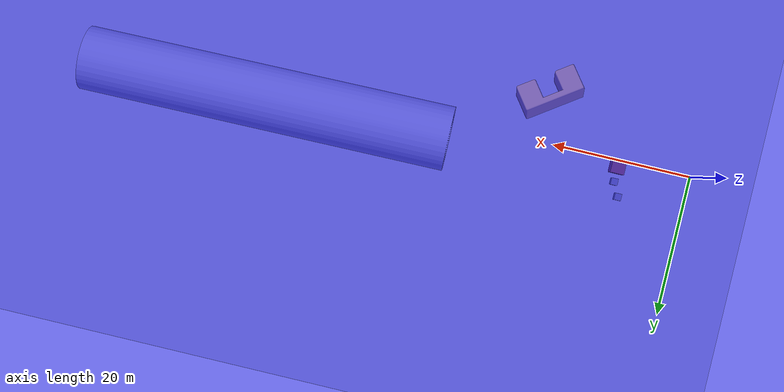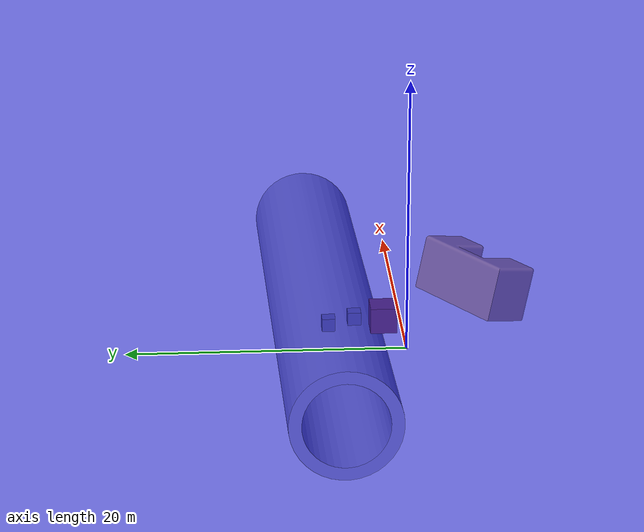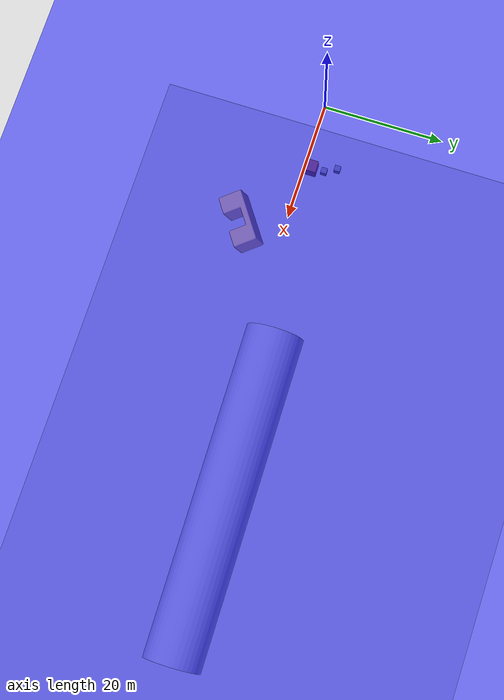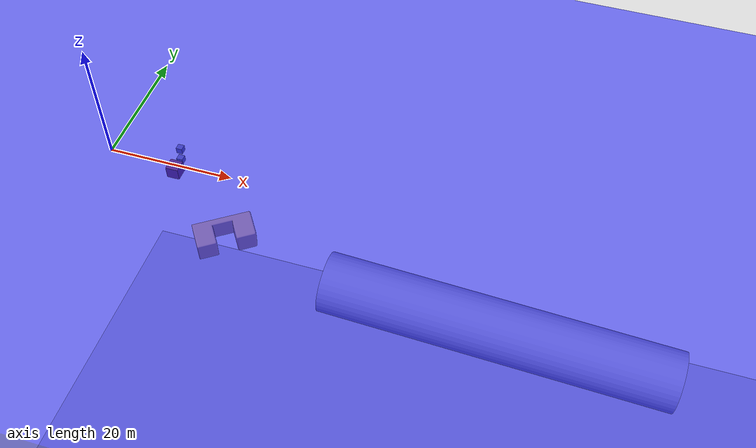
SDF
<sdf version="1.10">
 <world name="wamv_world">
  <physics name="1ms" type="ode">
   <max_step_size>0.001</max_step_size>
   <real_time_factor>1</real_time_factor>
   <real_time_update_rate>1000</real_time_update_rate>
  </physics>
  <plugin name="gz::sim::systems::Physics" filename="gz-sim-physics-system"/>
  <plugin name="gz::sim::systems::UserCommands" filename="gz-sim-user-commands-system"/>
  <plugin name="gz::sim::systems::Buoyancy" filename="gz-sim-buoyancy-system">
   <graded_buoyancy>
    <default_density>1000</default_density>
    <density_change><above_depth>0</above_depth><density>1</density></density_change>
   </graded_buoyancy>
   <enable>wamv</enable>
   <enable>my_lrauv_modified</enable>
   <enable>box_neutral_buoyancy</enable>
   <enable>box_neutral_buoyancy_1</enable>
   <enable>box_neutral_buoyancy_2</enable>
   <enable>Concave_Obstacle</enable>
   <enable>pipe</enable>
  </plugin>
  <plugin name="gz::sim::systems::Imu" filename="gz-sim-imu-system"/>
  <plugin name="gz::sim::systems::Magnetometer" filename="gz-sim-magnetometer-system"/>
  <plugin name="gz::sim::systems::ForceTorque" filename="gz-sim-forcetorque-system"/>
  <plugin name="gz::sim::systems::SceneBroadcaster" filename="gz-sim-scene-broadcaster-system"/>
  <plugin name="gz::sim::systems::Contact" filename="gz-sim-contact-system"/>
  <plugin name="gz::sim::systems::NavSat" filename="gz-sim-navsat-system"/>
  <plugin name="gz::sim::systems::AirPressure" filename="gz-sim-air-pressure-system"/>
  <plugin name="gz::sim::systems::Sensors" filename="gz-sim-sensors-system">
   <render_engine>ogre2</render_engine>
  </plugin>
  <spherical_coordinates>
   <surface_model>EARTH_WGS84</surface_model>
   <world_frame_orientation>ENU</world_frame_orientation>
   <latitude_deg>42.35821841111111</latitude_deg>
   <longitude_deg>-71.047923555555499</longitude_deg>
   <elevation>0</elevation>
   <heading_deg>0</heading_deg>
  </spherical_coordinates>
  <atmosphere type="adiabatic"/>
  <scene>
   <ambient>0.400000006 0.400000006 0.400000006 1</ambient>
   <background>0.699999988 0.699999988 0.699999988 1</background>
   <shadows>true</shadows>
  </scene>
  <gravity>0 0 -9.8000000000000007</gravity>
  <magnetic_field>5.5644999999999998e-06 2.2875799999999999e-05 -4.2388400000000002e-05</magnetic_field>
  <model name="water_plane">
   <static>true</static>
   <link name="link">
    <visual name="water_plane">
     <geometry><box><size>1000 1000 100</size><normal>0 0 1</normal></box></geometry>
     <material><ambient>0 0 1 0.5</ambient><diffuse>0 0 1 0.5</diffuse><specular>0 0 1 0.5</specular></material>
    </visual>
    <pose>0 0 -50 0 0 0</pose>
    <inertial>
     <mass>1</mass>
     <inertia><ixx>1</ixx><ixy>0</ixy><ixz>0</ixz><iyy>1</iyy><iyz>0</iyz><izz>1</izz></inertia>
    </inertial>
   </link>
   <pose>0 -4.9779529571533203 0 0 0 0</pose>
  </model>
  <model name="ground_plane">
   <static>true</static>
   <link name="link">
    <collision name="collision">
     <geometry><plane><normal>0 0 1</normal><size>1000 1000</size></plane></geometry>
     <surface><friction><ode><mu>100</mu><mu2>50</mu2></ode></friction></surface>
    </collision>
    <visual name="visual">
     <cast_shadows>false</cast_shadows>
     <geometry><plane><normal>0 0 1</normal><size>100 100</size></plane></geometry>
     <material>
      <ambient>0.300000012 0.300000012 0.300000012 1</ambient>
      <diffuse>0.699999988 0.699999988 0.699999988 1</diffuse>
      <specular>0.00999999978 0.00999999978 0.00999999978 1</specular>
     </material>
    </visual>
    <inertial>
     <mass>1</mass>
     <inertia><ixx>1</ixx><ixy>0</ixy><ixz>0</ixz><iyy>1</iyy><iyz>0</iyz><izz>1</izz></inertia>
    </inertial>
   </link>
   <pose>0 0 -100 0 0 0</pose>
  </model>
  <model name="world_origin_marker">
   <static>true</static>
   <link name="marker_link">
    <visual name="visual">
     <geometry><sphere><radius>0.10000000000000001</radius></sphere></geometry>
     <material><ambient>1 0 0 1</ambient></material>
    </visual>
    <inertial>
     <mass>1</mass>
     <inertia><ixx>1</ixx><ixy>0</ixy><ixz>0</ixz><iyy>1</iyy><iyz>0</iyz><izz>1</izz></inertia>
    </inertial>
   </link>
   <pose>0 0 0 0 0 -0.16809223025261216</pose>
  </model>
  <model name="box_neutral_buoyancy">
   <pose>10 0.80000000000000004 -2 0 0 0</pose>
   <link name="body">
    <inertial>
     <mass>8000</mass>
     <pose>0 0 0.10000000000000001 0 0 0</pose>
     <inertia>
      <ixx>86.289078218599656</ixx>
      <ixy>0</ixy>
      <ixz>0</ixz>
      <iyy>86.289078218599656</iyy>
      <iyz>0</iyz>
      <izz>5.0265482457436708</izz>
     </inertia>
    </inertial>
    <visual name="body_visual">
     <geometry><box><size>2 2 2</size></box></geometry>
     <material>
      <ambient>0.400000006 0.200000003 0.100000001 1</ambient>
      <diffuse>0.600000024 0.300000012 0.150000006 1</diffuse>
      <specular>0.100000001 0.0500000007 0.0199999996 1</specular>
     </material>
    </visual>
    <collision name="body_collision">
     <geometry><box><size>2 2 2</size></box></geometry>
     <laser_retro>1</laser_retro>
    </collision>
   </link>
   <static>false</static>
  </model>
  <model name="box_neutral_buoyancy_1">
   <pose>10 3 -2 0 0 0</pose>
   <link name="body">
    <inertial>
     <mass>1000</mass>
     <pose>0 0 0.10000000000000001 0 0 0</pose>
     <inertia>
      <ixx>86.289078218599656</ixx>
      <ixy>0</ixy>
      <ixz>0</ixz>
      <iyy>86.289078218599656</iyy>
      <iyz>0</iyz>
      <izz>5.0265482457436708</izz>
     </inertia>
    </inertial>
    <visual name="body_visual">
     <geometry><box><size>1 1 1</size></box></geometry>
     <material>
      <ambient>0.5 0.5 0.5 1</ambient>
      <diffuse>0.5 0.5 0.5 1</diffuse>
      <specular>0.5 0.5 0.5 1</specular>
     </material>
    </visual>
    <collision name="body_collision">
     <geometry><box><size>1 1 1</size></box></geometry>
     <laser_retro>1</laser_retro>
    </collision>
   </link>
   <static>false</static>
  </model>
  <model name="box_neutral_buoyancy_2">
   <pose>9 5 -2 0 0 0</pose>
   <link name="body">
    <inertial>
     <mass>1000</mass>
     <pose>0 0 0.10000000000000001 0 0 0</pose>
     <inertia>
      <ixx>86.289078218599656</ixx>
      <ixy>0</ixy>
      <ixz>0</ixz>
      <iyy>86.289078218599656</iyy>
      <iyz>0</iyz>
      <izz>5.0265482457436708</izz>
     </inertia>
    </inertial>
    <visual name="body_visual">
     <geometry><box><size>1 1 1</size></box></geometry>
     <material>
      <ambient>0.5 0.5 0.5 1</ambient>
      <diffuse>0.5 0.5 0.5 1</diffuse>
      <specular>0.5 0.5 0.5 1</specular>
     </material>
    </visual>
    <collision name="body_collision">
     <geometry><box><size>1 1 1</size></box></geometry>
     <laser_retro>1</laser_retro>
    </collision>
   </link>
   <static>false</static>
  </model>
  <model name="Concave_Obstacle">
   <link name="base_link">
    <must_be_base_link>true</must_be_base_link>
    <pose>16 -8 -6 0 0 0</pose>
    <inertial>
     <mass>14785.6</mass>
     <inertia><ixx>1</ixx><ixy>0</ixy><ixz>0</ixz><iyy>1</iyy><iyz>0</iyz><izz>1</izz></inertia>
    </inertial>
    <collision name="base_link_collision">
     <geometry><box><size>2 3 2.4644516666666672</size></box></geometry>
     <surface><friction><ode><mu>1.05</mu><mu2>1.05</mu2></ode></friction></surface>
    </collision>
    <visual name="base_link_visual">
     <geometry>
      <mesh>
       <uri>file:////home/arash/ros2_ws/src/surface/models/concave_obstacle/meshes/Unnamed-concave_obstacle.dae</uri>
      </mesh>
     </geometry>
    </visual>
    <inertia>
     <Ixx>0.593977313</Ixx>
     <Ixy>−0.017091614</Ixy>
     <Ixz>−0.02798984</Ixz>
     <Iyx>−0.017091614</Iyx>
     <Iyy>1.444791889</Iyy>
     <Iyz>−0.007921778</Iyz>
     <Izx>−0.02798984</Izx>
     <Izy>−0.007921778</Izy>
     <Izz>0.928181238</Izz>
    </inertia>
   </link>
   <static>false</static>
  </model>
  <model name="pipe">
   <link name="base_link">
    <must_be_base_link>true</must_be_base_link>
    <pose>16 8 -7 0 0 0</pose>
    <inertial>
     <mass>92600000</mass>
     <inertia><ixx>1</ixx><ixy>0</ixy><ixz>0</ixz><iyy>1</iyy><iyz>0</iyz><izz>1</izz></inertia>
    </inertial>
    <collision name="base_link_collision">
     <pose>10 0 -2 3.1400000000000001 1.3400000000000001 3.1400000000000001</pose>
     <geometry><box><size>60 11 11</size></box></geometry>
     <surface><friction><ode><mu>1.05</mu><mu2>1.05</mu2></ode></friction></surface>
    </collision>
    <visual name="base_link_visual">
     <geometry>
      <mesh>
       <uri>file:////home/arash/ros2_ws/src/surface/models/pipe/meshes/pipe.STL</uri>
       <scale>0.001 0.001 0.001</scale>
      </mesh>
     </geometry>
    </visual>
    <inertia>
     <Ixx>0.593977313</Ixx>
     <Ixy>−0.017091614</Ixy>
     <Ixz>−0.02798984</Ixz>
     <Iyx>−0.017091614</Iyx>
     <Iyy>1.444791889</Iyy>
     <Iyz>−0.007921778</Iyz>
     <Izx>−0.02798984</Izx>
     <Izy>−0.007921778</Izy>
     <Izz>0.928181238</Izz>
    </inertia>
   </link>
   <pose>84.856887144699698 -12.287217107735163 -47.19247788508671 -0.76813787966026092 -1.4706899893753884 0.78198587951093324</pose>
   <static>false</static>
  </model>
  <light name="sun" type="directional">
   <pose>0 0 10000 0 0 0</pose>
   <cast_shadows>false</cast_shadows>
   <intensity>1</intensity>
   <direction>-0.5 0.10000000000000001 -0.90000000000000002</direction>
   <diffuse>0.800000012 0.800000012 0.800000012 1</diffuse>
   <specular>0.200000003 0.200000003 0.200000003 1</specular>
   <attenuation>
    <range>1000</range>
    <linear>0.0099999997764825821</linear>
    <constant>0.89999997615814209</constant>
    <quadratic>0.0010000000474974513</quadratic>
   </attenuation>
   <spot><inner_angle>0</inner_angle><outer_angle>0</outer_angle><falloff>0</falloff></spot>
  </light>
 </world>
</sdf>
